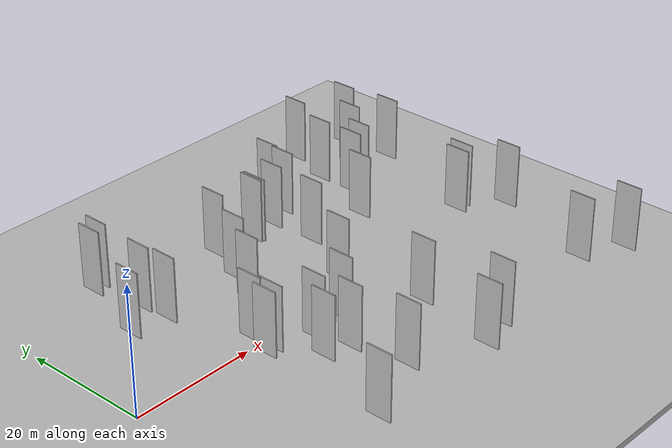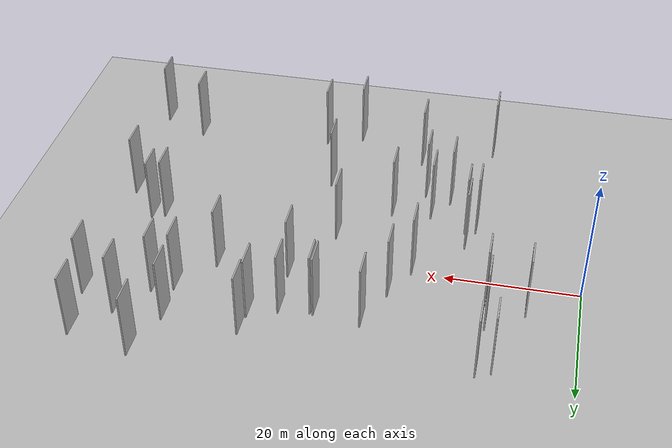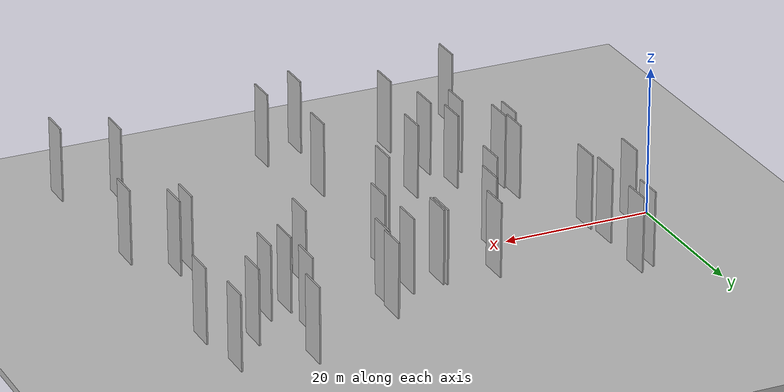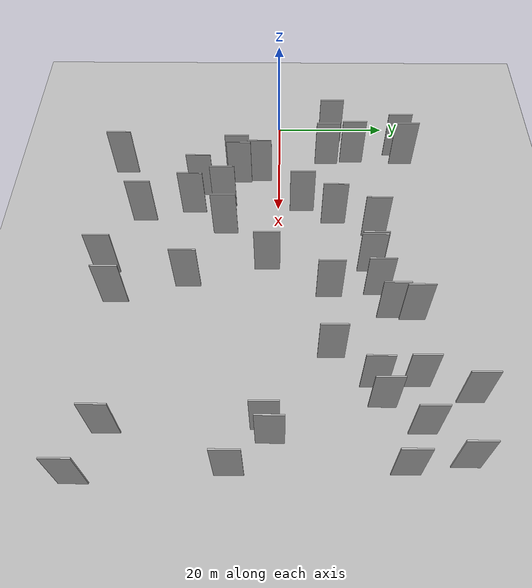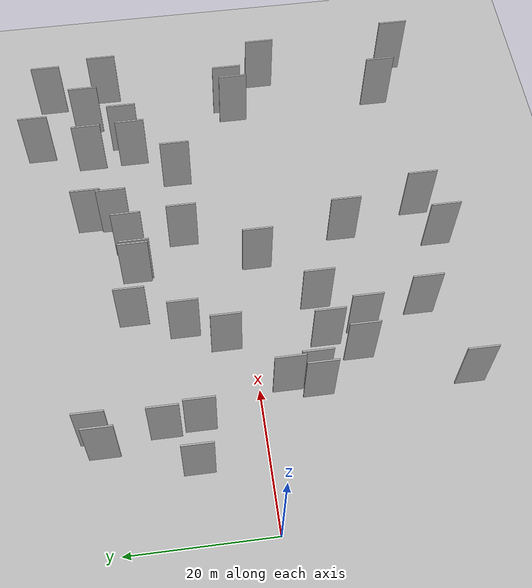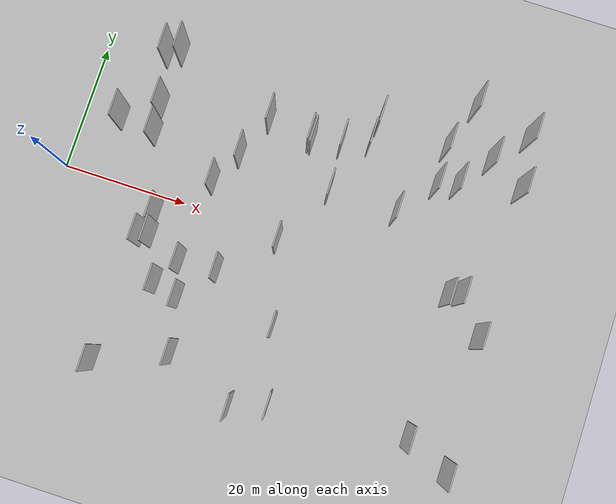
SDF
<?xml version="1.0" encoding="utf-8"?>

<sdf version="1.6">

   <world name="default">

      <gui fullscreen="0">

         <camera name="user_camera">

            <pose>-15 0 4.57585 0 0 0</pose>

            <view_controller>orbit</view_controller>

         </camera>

      </gui>

      <scene>

         <sky>

           <clouds>

             <speed>12</speed>

           </clouds>

         </sky>

         <ambient>0.4 0.4 0.4 1</ambient>

         <background>0.7 0.7 0.7 1</background>

         <shadows>1</shadows>

      </scene>

      <gravity>0 0 -9.8066</gravity>

      <magnetic_field>6e-06 2.3e-05 -4.2e-05</magnetic_field>

      <physics default="0" name="default_physics" type="ode">

         <ode>

            <solver>

               <type>quick</type>

               <iters>10</iters>

               <sor>1.0</sor>

               <use_dynamic_moi_rescaling>0</use_dynamic_moi_rescaling>

            </solver>

            <constraints>

               <cfm>0</cfm>

               <erp>0.2</erp>

               <contact_max_correcting_vel>100</contact_max_correcting_vel>

               <contact_surface_layer>0.001</contact_surface_layer>

            </constraints>

         </ode>

         <max_step_size>0.004</max_step_size>

         <real_time_factor>1</real_time_factor>

         <real_time_update_rate>250</real_time_update_rate>

      </physics>

      <light name="sun" type="directional">

         <cast_shadows>1</cast_shadows>

         <pose>0 0 10 0 0 0</pose>

         <diffuse>0.8 0.8 0.8 1</diffuse>

         <specular>0.2 0.2 0.2 1</specular>

         <attenuation>

            <range>1000</range>

            <constant>0.9</constant>

            <linear>0.01</linear>

            <quadratic>0.001</quadratic>

         </attenuation>

         <direction>-0.5 0.1 -0.9</direction>

      </light>

      <include>

         <name>ground_plane_1</name>

         <uri>model://HANNAS_ground_plane</uri>

         <pose>0 0 0  0 0 0</pose>

      </include>

      <include>

         <name>ground_plane_2</name>

         <uri>model://HANNAS_ground_plane</uri>

         <pose>100 0 0  0 0 0</pose>

      </include>

      <model name="HANNAS_wall_1">

         <static>1</static>

         <pose frame="">24.2432 3.9375 5.0 0.000000 0.000000 1.570796</pose>

         <link name="link">

            <pose frame="">0 0 5.00 0 0 0</pose>

            <collision name="collision">

               <geometry>

                  <box>

                     <size>4.00 0.2 10.00</size>

                  </box>

               </geometry>

               <max_contacts>10</max_contacts>

               <surface>

                  <contact>

                     <ode/>

                  </contact>

                  <bounce/>

                  <friction>

                     <torsional>

                        <ode/>

                     </torsional>

                     <ode/>

                  </friction>

               </surface>

            </collision>

            <visual name="visual">

               <cast_shadows>0</cast_shadows>

               <geometry>

                  <box>

                     <size>4.00 0.2 10.00</size>

                  </box>

               </geometry>

               <material>

                  <script>

                     <uri>model://HANNAS_wall/materials/scripts</uri>

                     <uri>model://HANNAS_wall/materials/textures</uri>

                     <name>vrc/HANNAS_wall</name>

                  </script>

               </material>

            </visual>

            <self_collide>0</self_collide>

            <enable_wind>0</enable_wind>

            <kinematic>0</kinematic>

         </link>

      </model>

      <model name="HANNAS_wall_2">

         <static>1</static>

         <pose frame="">23.2926 -9.1409 5.0 0.000000 0.000000 1.570796</pose>

         <link name="link">

            <pose frame="">0 0 5.00 0 0 0</pose>

            <collision name="collision">

               <geometry>

                  <box>

                     <size>4.00 0.2 10.00</size>

                  </box>

               </geometry>

               <max_contacts>10</max_contacts>

               <surface>

                  <contact>

                     <ode/>

                  </contact>

                  <bounce/>

                  <friction>

                     <torsional>

                        <ode/>

                     </torsional>

                     <ode/>

                  </friction>

               </surface>

            </collision>

            <visual name="visual">

               <cast_shadows>0</cast_shadows>

               <geometry>

                  <box>

                     <size>4.00 0.2 10.00</size>

                  </box>

               </geometry>

               <material>

                  <script>

                     <uri>model://HANNAS_wall/materials/scripts</uri>

                     <uri>model://HANNAS_wall/materials/textures</uri>

                     <name>vrc/HANNAS_wall</name>

                  </script>

               </material>

            </visual>

            <self_collide>0</self_collide>

            <enable_wind>0</enable_wind>

            <kinematic>0</kinematic>

         </link>

      </model>

      <model name="HANNAS_wall_3">

         <static>1</static>

         <pose frame="">45.2457 20.4414 5.0 0.000000 0.000000 1.570796</pose>

         <link name="link">

            <pose frame="">0 0 5.00 0 0 0</pose>

            <collision name="collision">

               <geometry>

                  <box>

                     <size>4.00 0.2 10.00</size>

                  </box>

               </geometry>

               <max_contacts>10</max_contacts>

               <surface>

                  <contact>

                     <ode/>

                  </contact>

                  <bounce/>

                  <friction>

                     <torsional>

                        <ode/>

                     </torsional>

                     <ode/>

                  </friction>

               </surface>

            </collision>

            <visual name="visual">

               <cast_shadows>0</cast_shadows>

               <geometry>

                  <box>

                     <size>4.00 0.2 10.00</size>

                  </box>

               </geometry>

               <material>

                  <script>

                     <uri>model://HANNAS_wall/materials/scripts</uri>

                     <uri>model://HANNAS_wall/materials/textures</uri>

                     <name>vrc/HANNAS_wall</name>

                  </script>

               </material>

            </visual>

            <self_collide>0</self_collide>

            <enable_wind>0</enable_wind>

            <kinematic>0</kinematic>

         </link>

      </model>

      <model name="HANNAS_wall_4">

         <static>1</static>

         <pose frame="">17.8846 -6.6903 5.0 0.000000 0.000000 1.570796</pose>

         <link name="link">

            <pose frame="">0 0 5.00 0 0 0</pose>

            <collision name="collision">

               <geometry>

                  <box>

                     <size>4.00 0.2 10.00</size>

                  </box>

               </geometry>

               <max_contacts>10</max_contacts>

               <surface>

                  <contact>

                     <ode/>

                  </contact>

                  <bounce/>

                  <friction>

                     <torsional>

                        <ode/>

                     </torsional>

                     <ode/>

                  </friction>

               </surface>

            </collision>

            <visual name="visual">

               <cast_shadows>0</cast_shadows>

               <geometry>

                  <box>

                     <size>4.00 0.2 10.00</size>

                  </box>

               </geometry>

               <material>

                  <script>

                     <uri>model://HANNAS_wall/materials/scripts</uri>

                     <uri>model://HANNAS_wall/materials/textures</uri>

                     <name>vrc/HANNAS_wall</name>

                  </script>

               </material>

            </visual>

            <self_collide>0</self_collide>

            <enable_wind>0</enable_wind>

            <kinematic>0</kinematic>

         </link>

      </model>

      <model name="HANNAS_wall_5">

         <static>1</static>

         <pose frame="">17.4919 -3.2314 5.0 0.000000 0.000000 1.570796</pose>

         <link name="link">

            <pose frame="">0 0 5.00 0 0 0</pose>

            <collision name="collision">

               <geometry>

                  <box>

                     <size>4.00 0.2 10.00</size>

                  </box>

               </geometry>

               <max_contacts>10</max_contacts>

               <surface>

                  <contact>

                     <ode/>

                  </contact>

                  <bounce/>

                  <friction>

                     <torsional>

                        <ode/>

                     </torsional>

                     <ode/>

                  </friction>

               </surface>

            </collision>

            <visual name="visual">

               <cast_shadows>0</cast_shadows>

               <geometry>

                  <box>

                     <size>4.00 0.2 10.00</size>

                  </box>

               </geometry>

               <material>

                  <script>

                     <uri>model://HANNAS_wall/materials/scripts</uri>

                     <uri>model://HANNAS_wall/materials/textures</uri>

                     <name>vrc/HANNAS_wall</name>

                  </script>

               </material>

            </visual>

            <self_collide>0</self_collide>

            <enable_wind>0</enable_wind>

            <kinematic>0</kinematic>

         </link>

      </model>

      <model name="HANNAS_wall_6">

         <static>1</static>

         <pose frame="">36.1043 14.7646 5.0 0.000000 0.000000 1.570796</pose>

         <link name="link">

            <pose frame="">0 0 5.00 0 0 0</pose>

            <collision name="collision">

               <geometry>

                  <box>

                     <size>4.00 0.2 10.00</size>

                  </box>

               </geometry>

               <max_contacts>10</max_contacts>

               <surface>

                  <contact>

                     <ode/>

                  </contact>

                  <bounce/>

                  <friction>

                     <torsional>

                        <ode/>

                     </torsional>

                     <ode/>

                  </friction>

               </surface>

            </collision>

            <visual name="visual">

               <cast_shadows>0</cast_shadows>

               <geometry>

                  <box>

                     <size>4.00 0.2 10.00</size>

                  </box>

               </geometry>

               <material>

                  <script>

                     <uri>model://HANNAS_wall/materials/scripts</uri>

                     <uri>model://HANNAS_wall/materials/textures</uri>

                     <name>vrc/HANNAS_wall</name>

                  </script>

               </material>

            </visual>

            <self_collide>0</self_collide>

            <enable_wind>0</enable_wind>

            <kinematic>0</kinematic>

         </link>

      </model>

      <model name="HANNAS_wall_7">

         <static>1</static>

         <pose frame="">13.2805 21.7446 5.0 0.000000 0.000000 1.570796</pose>

         <link name="link">

            <pose frame="">0 0 5.00 0 0 0</pose>

            <collision name="collision">

               <geometry>

                  <box>

                     <size>4.00 0.2 10.00</size>

                  </box>

               </geometry>

               <max_contacts>10</max_contacts>

               <surface>

                  <contact>

                     <ode/>

                  </contact>

                  <bounce/>

                  <friction>

                     <torsional>

                        <ode/>

                     </torsional>

                     <ode/>

                  </friction>

               </surface>

            </collision>

            <visual name="visual">

               <cast_shadows>0</cast_shadows>

               <geometry>

                  <box>

                     <size>4.00 0.2 10.00</size>

                  </box>

               </geometry>

               <material>

                  <script>

                     <uri>model://HANNAS_wall/materials/scripts</uri>

                     <uri>model://HANNAS_wall/materials/textures</uri>

                     <name>vrc/HANNAS_wall</name>

                  </script>

               </material>

            </visual>

            <self_collide>0</self_collide>

            <enable_wind>0</enable_wind>

            <kinematic>0</kinematic>

         </link>

      </model>

      <model name="HANNAS_wall_8">

         <static>1</static>

         <pose frame="">67.4534 25.0404 5.0 0.000000 0.000000 1.570796</pose>

         <link name="link">

            <pose frame="">0 0 5.00 0 0 0</pose>

            <collision name="collision">

               <geometry>

                  <box>

                     <size>4.00 0.2 10.00</size>

                  </box>

               </geometry>

               <max_contacts>10</max_contacts>

               <surface>

                  <contact>

                     <ode/>

                  </contact>

                  <bounce/>

                  <friction>

                     <torsional>

                        <ode/>

                     </torsional>

                     <ode/>

                  </friction>

               </surface>

            </collision>

            <visual name="visual">

               <cast_shadows>0</cast_shadows>

               <geometry>

                  <box>

                     <size>4.00 0.2 10.00</size>

                  </box>

               </geometry>

               <material>

                  <script>

                     <uri>model://HANNAS_wall/materials/scripts</uri>

                     <uri>model://HANNAS_wall/materials/textures</uri>

                     <name>vrc/HANNAS_wall</name>

                  </script>

               </material>

            </visual>

            <self_collide>0</self_collide>

            <enable_wind>0</enable_wind>

            <kinematic>0</kinematic>

         </link>

      </model>

      <model name="HANNAS_wall_9">

         <static>1</static>

         <pose frame="">29.4606 15.7195 5.0 0.000000 0.000000 1.570796</pose>

         <link name="link">

            <pose frame="">0 0 5.00 0 0 0</pose>

            <collision name="collision">

               <geometry>

                  <box>

                     <size>4.00 0.2 10.00</size>

                  </box>

               </geometry>

               <max_contacts>10</max_contacts>

               <surface>

                  <contact>

                     <ode/>

                  </contact>

                  <bounce/>

                  <friction>

                     <torsional>

                        <ode/>

                     </torsional>

                     <ode/>

                  </friction>

               </surface>

            </collision>

            <visual name="visual">

               <cast_shadows>0</cast_shadows>

               <geometry>

                  <box>

                     <size>4.00 0.2 10.00</size>

                  </box>

               </geometry>

               <material>

                  <script>

                     <uri>model://HANNAS_wall/materials/scripts</uri>

                     <uri>model://HANNAS_wall/materials/textures</uri>

                     <name>vrc/HANNAS_wall</name>

                  </script>

               </material>

            </visual>

            <self_collide>0</self_collide>

            <enable_wind>0</enable_wind>

            <kinematic>0</kinematic>

         </link>

      </model>

      <model name="HANNAS_wall_10">

         <static>1</static>

         <pose frame="">59.2026 14.6975 5.0 0.000000 0.000000 1.570796</pose>

         <link name="link">

            <pose frame="">0 0 5.00 0 0 0</pose>

            <collision name="collision">

               <geometry>

                  <box>

                     <size>4.00 0.2 10.00</size>

                  </box>

               </geometry>

               <max_contacts>10</max_contacts>

               <surface>

                  <contact>

                     <ode/>

                  </contact>

                  <bounce/>

                  <friction>

                     <torsional>

                        <ode/>

                     </torsional>

                     <ode/>

                  </friction>

               </surface>

            </collision>

            <visual name="visual">

               <cast_shadows>0</cast_shadows>

               <geometry>

                  <box>

                     <size>4.00 0.2 10.00</size>

                  </box>

               </geometry>

               <material>

                  <script>

                     <uri>model://HANNAS_wall/materials/scripts</uri>

                     <uri>model://HANNAS_wall/materials/textures</uri>

                     <name>vrc/HANNAS_wall</name>

                  </script>

               </material>

            </visual>

            <self_collide>0</self_collide>

            <enable_wind>0</enable_wind>

            <kinematic>0</kinematic>

         </link>

      </model>

      <model name="HANNAS_wall_11">

         <static>1</static>

         <pose frame="">29.0772 -8.6828 5.0 0.000000 0.000000 1.570796</pose>

         <link name="link">

            <pose frame="">0 0 5.00 0 0 0</pose>

            <collision name="collision">

               <geometry>

                  <box>

                     <size>4.00 0.2 10.00</size>

                  </box>

               </geometry>

               <max_contacts>10</max_contacts>

               <surface>

                  <contact>

                     <ode/>

                  </contact>

                  <bounce/>

                  <friction>

                     <torsional>

                        <ode/>

                     </torsional>

                     <ode/>

                  </friction>

               </surface>

            </collision>

            <visual name="visual">

               <cast_shadows>0</cast_shadows>

               <geometry>

                  <box>

                     <size>4.00 0.2 10.00</size>

                  </box>

               </geometry>

               <material>

                  <script>

                     <uri>model://HANNAS_wall/materials/scripts</uri>

                     <uri>model://HANNAS_wall/materials/textures</uri>

                     <name>vrc/HANNAS_wall</name>

                  </script>

               </material>

            </visual>

            <self_collide>0</self_collide>

            <enable_wind>0</enable_wind>

            <kinematic>0</kinematic>

         </link>

      </model>

      <model name="HANNAS_wall_12">

         <static>1</static>

         <pose frame="">68.4781 17.0027 5.0 0.000000 0.000000 1.570796</pose>

         <link name="link">

            <pose frame="">0 0 5.00 0 0 0</pose>

            <collision name="collision">

               <geometry>

                  <box>

                     <size>4.00 0.2 10.00</size>

                  </box>

               </geometry>

               <max_contacts>10</max_contacts>

               <surface>

                  <contact>

                     <ode/>

                  </contact>

                  <bounce/>

                  <friction>

                     <torsional>

                        <ode/>

                     </torsional>

                     <ode/>

                  </friction>

               </surface>

            </collision>

            <visual name="visual">

               <cast_shadows>0</cast_shadows>

               <geometry>

                  <box>

                     <size>4.00 0.2 10.00</size>

                  </box>

               </geometry>

               <material>

                  <script>

                     <uri>model://HANNAS_wall/materials/scripts</uri>

                     <uri>model://HANNAS_wall/materials/textures</uri>

                     <name>vrc/HANNAS_wall</name>

                  </script>

               </material>

            </visual>

            <self_collide>0</self_collide>

            <enable_wind>0</enable_wind>

            <kinematic>0</kinematic>

         </link>

      </model>

      <model name="HANNAS_wall_13">

         <static>1</static>

         <pose frame="">7.7186 9.2386 5.0 0.000000 0.000000 1.570796</pose>

         <link name="link">

            <pose frame="">0 0 5.00 0 0 0</pose>

            <collision name="collision">

               <geometry>

                  <box>

                     <size>4.00 0.2 10.00</size>

                  </box>

               </geometry>

               <max_contacts>10</max_contacts>

               <surface>

                  <contact>

                     <ode/>

                  </contact>

                  <bounce/>

                  <friction>

                     <torsional>

                        <ode/>

                     </torsional>

                     <ode/>

                  </friction>

               </surface>

            </collision>

            <visual name="visual">

               <cast_shadows>0</cast_shadows>

               <geometry>

                  <box>

                     <size>4.00 0.2 10.00</size>

                  </box>

               </geometry>

               <material>

                  <script>

                     <uri>model://HANNAS_wall/materials/scripts</uri>

                     <uri>model://HANNAS_wall/materials/textures</uri>

                     <name>vrc/HANNAS_wall</name>

                  </script>

               </material>

            </visual>

            <self_collide>0</self_collide>

            <enable_wind>0</enable_wind>

            <kinematic>0</kinematic>

         </link>

      </model>

      <model name="HANNAS_wall_14">

         <static>1</static>

         <pose frame="">56.2349 13.7219 5.0 0.000000 0.000000 1.570796</pose>

         <link name="link">

            <pose frame="">0 0 5.00 0 0 0</pose>

            <collision name="collision">

               <geometry>

                  <box>

                     <size>4.00 0.2 10.00</size>

                  </box>

               </geometry>

               <max_contacts>10</max_contacts>

               <surface>

                  <contact>

                     <ode/>

                  </contact>

                  <bounce/>

                  <friction>

                     <torsional>

                        <ode/>

                     </torsional>

                     <ode/>

                  </friction>

               </surface>

            </collision>

            <visual name="visual">

               <cast_shadows>0</cast_shadows>

               <geometry>

                  <box>

                     <size>4.00 0.2 10.00</size>

                  </box>

               </geometry>

               <material>

                  <script>

                     <uri>model://HANNAS_wall/materials/scripts</uri>

                     <uri>model://HANNAS_wall/materials/textures</uri>

                     <name>vrc/HANNAS_wall</name>

                  </script>

               </material>

            </visual>

            <self_collide>0</self_collide>

            <enable_wind>0</enable_wind>

            <kinematic>0</kinematic>

         </link>

      </model>

      <model name="HANNAS_wall_15">

         <static>1</static>

         <pose frame="">36.5384 14.5625 5.0 0.000000 0.000000 1.570796</pose>

         <link name="link">

            <pose frame="">0 0 5.00 0 0 0</pose>

            <collision name="collision">

               <geometry>

                  <box>

                     <size>4.00 0.2 10.00</size>

                  </box>

               </geometry>

               <max_contacts>10</max_contacts>

               <surface>

                  <contact>

                     <ode/>

                  </contact>

                  <bounce/>

                  <friction>

                     <torsional>

                        <ode/>

                     </torsional>

                     <ode/>

                  </friction>

               </surface>

            </collision>

            <visual name="visual">

               <cast_shadows>0</cast_shadows>

               <geometry>

                  <box>

                     <size>4.00 0.2 10.00</size>

                  </box>

               </geometry>

               <material>

                  <script>

                     <uri>model://HANNAS_wall/materials/scripts</uri>

                     <uri>model://HANNAS_wall/materials/textures</uri>

                     <name>vrc/HANNAS_wall</name>

                  </script>

               </material>

            </visual>

            <self_collide>0</self_collide>

            <enable_wind>0</enable_wind>

            <kinematic>0</kinematic>

         </link>

      </model>

      <model name="HANNAS_wall_16">

         <static>1</static>

         <pose frame="">40.8732 15.3403 5.0 0.000000 0.000000 1.570796</pose>

         <link name="link">

            <pose frame="">0 0 5.00 0 0 0</pose>

            <collision name="collision">

               <geometry>

                  <box>

                     <size>4.00 0.2 10.00</size>

                  </box>

               </geometry>

               <max_contacts>10</max_contacts>

               <surface>

                  <contact>

                     <ode/>

                  </contact>

                  <bounce/>

                  <friction>

                     <torsional>

                        <ode/>

                     </torsional>

                     <ode/>

                  </friction>

               </surface>

            </collision>

            <visual name="visual">

               <cast_shadows>0</cast_shadows>

               <geometry>

                  <box>

                     <size>4.00 0.2 10.00</size>

                  </box>

               </geometry>

               <material>

                  <script>

                     <uri>model://HANNAS_wall/materials/scripts</uri>

                     <uri>model://HANNAS_wall/materials/textures</uri>

                     <name>vrc/HANNAS_wall</name>

                  </script>

               </material>

            </visual>

            <self_collide>0</self_collide>

            <enable_wind>0</enable_wind>

            <kinematic>0</kinematic>

         </link>

      </model>

      <model name="HANNAS_wall_17">

         <static>1</static>

         <pose frame="">44.9119 17.0406 5.0 0.000000 0.000000 1.570796</pose>

         <link name="link">

            <pose frame="">0 0 5.00 0 0 0</pose>

            <collision name="collision">

               <geometry>

                  <box>

                     <size>4.00 0.2 10.00</size>

                  </box>

               </geometry>

               <max_contacts>10</max_contacts>

               <surface>

                  <contact>

                     <ode/>

                  </contact>

                  <bounce/>

                  <friction>

                     <torsional>

                        <ode/>

                     </torsional>

                     <ode/>

                  </friction>

               </surface>

            </collision>

            <visual name="visual">

               <cast_shadows>0</cast_shadows>

               <geometry>

                  <box>

                     <size>4.00 0.2 10.00</size>

                  </box>

               </geometry>

               <material>

                  <script>

                     <uri>model://HANNAS_wall/materials/scripts</uri>

                     <uri>model://HANNAS_wall/materials/textures</uri>

                     <name>vrc/HANNAS_wall</name>

                  </script>

               </material>

            </visual>

            <self_collide>0</self_collide>

            <enable_wind>0</enable_wind>

            <kinematic>0</kinematic>

         </link>

      </model>

      <model name="HANNAS_wall_18">

         <static>1</static>

         <pose frame="">39.5506 -14.0446 5.0 0.000000 0.000000 1.570796</pose>

         <link name="link">

            <pose frame="">0 0 5.00 0 0 0</pose>

            <collision name="collision">

               <geometry>

                  <box>

                     <size>4.00 0.2 10.00</size>

                  </box>

               </geometry>

               <max_contacts>10</max_contacts>

               <surface>

                  <contact>

                     <ode/>

                  </contact>

                  <bounce/>

                  <friction>

                     <torsional>

                        <ode/>

                     </torsional>

                     <ode/>

                  </friction>

               </surface>

            </collision>

            <visual name="visual">

               <cast_shadows>0</cast_shadows>

               <geometry>

                  <box>

                     <size>4.00 0.2 10.00</size>

                  </box>

               </geometry>

               <material>

                  <script>

                     <uri>model://HANNAS_wall/materials/scripts</uri>

                     <uri>model://HANNAS_wall/materials/textures</uri>

                     <name>vrc/HANNAS_wall</name>

                  </script>

               </material>

            </visual>

            <self_collide>0</self_collide>

            <enable_wind>0</enable_wind>

            <kinematic>0</kinematic>

         </link>

      </model>

      <model name="HANNAS_wall_19">

         <static>1</static>

         <pose frame="">62.9743 19.8848 5.0 0.000000 0.000000 1.570796</pose>

         <link name="link">

            <pose frame="">0 0 5.00 0 0 0</pose>

            <collision name="collision">

               <geometry>

                  <box>

                     <size>4.00 0.2 10.00</size>

                  </box>

               </geometry>

               <max_contacts>10</max_contacts>

               <surface>

                  <contact>

                     <ode/>

                  </contact>

                  <bounce/>

                  <friction>

                     <torsional>

                        <ode/>

                     </torsional>

                     <ode/>

                  </friction>

               </surface>

            </collision>

            <visual name="visual">

               <cast_shadows>0</cast_shadows>

               <geometry>

                  <box>

                     <size>4.00 0.2 10.00</size>

                  </box>

               </geometry>

               <material>

                  <script>

                     <uri>model://HANNAS_wall/materials/scripts</uri>

                     <uri>model://HANNAS_wall/materials/textures</uri>

                     <name>vrc/HANNAS_wall</name>

                  </script>

               </material>

            </visual>

            <self_collide>0</self_collide>

            <enable_wind>0</enable_wind>

            <kinematic>0</kinematic>

         </link>

      </model>

      <model name="HANNAS_wall_20">

         <static>1</static>

         <pose frame="">42.4502 -25.0538 5.0 0.000000 0.000000 1.570796</pose>

         <link name="link">

            <pose frame="">0 0 5.00 0 0 0</pose>

            <collision name="collision">

               <geometry>

                  <box>

                     <size>4.00 0.2 10.00</size>

                  </box>

               </geometry>

               <max_contacts>10</max_contacts>

               <surface>

                  <contact>

                     <ode/>

                  </contact>

                  <bounce/>

                  <friction>

                     <torsional>

                        <ode/>

                     </torsional>

                     <ode/>

                  </friction>

               </surface>

            </collision>

            <visual name="visual">

               <cast_shadows>0</cast_shadows>

               <geometry>

                  <box>

                     <size>4.00 0.2 10.00</size>

                  </box>

               </geometry>

               <material>

                  <script>

                     <uri>model://HANNAS_wall/materials/scripts</uri>

                     <uri>model://HANNAS_wall/materials/textures</uri>

                     <name>vrc/HANNAS_wall</name>

                  </script>

               </material>

            </visual>

            <self_collide>0</self_collide>

            <enable_wind>0</enable_wind>

            <kinematic>0</kinematic>

         </link>

      </model>

      <model name="HANNAS_wall_21">

         <static>1</static>

         <pose frame="">63.1284 -23.2529 5.0 0.000000 0.000000 1.570796</pose>

         <link name="link">

            <pose frame="">0 0 5.00 0 0 0</pose>

            <collision name="collision">

               <geometry>

                  <box>

                     <size>4.00 0.2 10.00</size>

                  </box>

               </geometry>

               <max_contacts>10</max_contacts>

               <surface>

                  <contact>

                     <ode/>

                  </contact>

                  <bounce/>

                  <friction>

                     <torsional>

                        <ode/>

                     </torsional>

                     <ode/>

                  </friction>

               </surface>

            </collision>

            <visual name="visual">

               <cast_shadows>0</cast_shadows>

               <geometry>

                  <box>

                     <size>4.00 0.2 10.00</size>

                  </box>

               </geometry>

               <material>

                  <script>

                     <uri>model://HANNAS_wall/materials/scripts</uri>

                     <uri>model://HANNAS_wall/materials/textures</uri>

                     <name>vrc/HANNAS_wall</name>

                  </script>

               </material>

            </visual>

            <self_collide>0</self_collide>

            <enable_wind>0</enable_wind>

            <kinematic>0</kinematic>

         </link>

      </model>

      <model name="HANNAS_wall_22">

         <static>1</static>

         <pose frame="">37.0051 -27.0518 5.0 0.000000 0.000000 1.570796</pose>

         <link name="link">

            <pose frame="">0 0 5.00 0 0 0</pose>

            <collision name="collision">

               <geometry>

                  <box>

                     <size>4.00 0.2 10.00</size>

                  </box>

               </geometry>

               <max_contacts>10</max_contacts>

               <surface>

                  <contact>

                     <ode/>

                  </contact>

                  <bounce/>

                  <friction>

                     <torsional>

                        <ode/>

                     </torsional>

                     <ode/>

                  </friction>

               </surface>

            </collision>

            <visual name="visual">

               <cast_shadows>0</cast_shadows>

               <geometry>

                  <box>

                     <size>4.00 0.2 10.00</size>

                  </box>

               </geometry>

               <material>

                  <script>

                     <uri>model://HANNAS_wall/materials/scripts</uri>

                     <uri>model://HANNAS_wall/materials/textures</uri>

                     <name>vrc/HANNAS_wall</name>

                  </script>

               </material>

            </visual>

            <self_collide>0</self_collide>

            <enable_wind>0</enable_wind>

            <kinematic>0</kinematic>

         </link>

      </model>

      <model name="HANNAS_wall_23">

         <static>1</static>

         <pose frame="">16.3018 -7.0420 5.0 0.000000 0.000000 1.570796</pose>

         <link name="link">

            <pose frame="">0 0 5.00 0 0 0</pose>

            <collision name="collision">

               <geometry>

                  <box>

                     <size>4.00 0.2 10.00</size>

                  </box>

               </geometry>

               <max_contacts>10</max_contacts>

               <surface>

                  <contact>

                     <ode/>

                  </contact>

                  <bounce/>

                  <friction>

                     <torsional>

                        <ode/>

                     </torsional>

                     <ode/>

                  </friction>

               </surface>

            </collision>

            <visual name="visual">

               <cast_shadows>0</cast_shadows>

               <geometry>

                  <box>

                     <size>4.00 0.2 10.00</size>

                  </box>

               </geometry>

               <material>

                  <script>

                     <uri>model://HANNAS_wall/materials/scripts</uri>

                     <uri>model://HANNAS_wall/materials/textures</uri>

                     <name>vrc/HANNAS_wall</name>

                  </script>

               </material>

            </visual>

            <self_collide>0</self_collide>

            <enable_wind>0</enable_wind>

            <kinematic>0</kinematic>

         </link>

      </model>

      <model name="HANNAS_wall_24">

         <static>1</static>

         <pose frame="">51.6771 7.8323 5.0 0.000000 0.000000 1.570796</pose>

         <link name="link">

            <pose frame="">0 0 5.00 0 0 0</pose>

            <collision name="collision">

               <geometry>

                  <box>

                     <size>4.00 0.2 10.00</size>

                  </box>

               </geometry>

               <max_contacts>10</max_contacts>

               <surface>

                  <contact>

                     <ode/>

                  </contact>

                  <bounce/>

                  <friction>

                     <torsional>

                        <ode/>

                     </torsional>

                     <ode/>

                  </friction>

               </surface>

            </collision>

            <visual name="visual">

               <cast_shadows>0</cast_shadows>

               <geometry>

                  <box>

                     <size>4.00 0.2 10.00</size>

                  </box>

               </geometry>

               <material>

                  <script>

                     <uri>model://HANNAS_wall/materials/scripts</uri>

                     <uri>model://HANNAS_wall/materials/textures</uri>

                     <name>vrc/HANNAS_wall</name>

                  </script>

               </material>

            </visual>

            <self_collide>0</self_collide>

            <enable_wind>0</enable_wind>

            <kinematic>0</kinematic>

         </link>

      </model>

      <model name="HANNAS_wall_25">

         <static>1</static>

         <pose frame="">68.7182 -6.2461 5.0 0.000000 0.000000 1.570796</pose>

         <link name="link">

            <pose frame="">0 0 5.00 0 0 0</pose>

            <collision name="collision">

               <geometry>

                  <box>

                     <size>4.00 0.2 10.00</size>

                  </box>

               </geometry>

               <max_contacts>10</max_contacts>

               <surface>

                  <contact>

                     <ode/>

                  </contact>

                  <bounce/>

                  <friction>

                     <torsional>

                        <ode/>

                     </torsional>

                     <ode/>

                  </friction>

               </surface>

            </collision>

            <visual name="visual">

               <cast_shadows>0</cast_shadows>

               <geometry>

                  <box>

                     <size>4.00 0.2 10.00</size>

                  </box>

               </geometry>

               <material>

                  <script>

                     <uri>model://HANNAS_wall/materials/scripts</uri>

                     <uri>model://HANNAS_wall/materials/textures</uri>

                     <name>vrc/HANNAS_wall</name>

                  </script>

               </material>

            </visual>

            <self_collide>0</self_collide>

            <enable_wind>0</enable_wind>

            <kinematic>0</kinematic>

         </link>

      </model>

      <model name="HANNAS_wall_26">

         <static>1</static>

         <pose frame="">11.2474 20.7764 5.0 0.000000 0.000000 1.570796</pose>

         <link name="link">

            <pose frame="">0 0 5.00 0 0 0</pose>

            <collision name="collision">

               <geometry>

                  <box>

                     <size>4.00 0.2 10.00</size>

                  </box>

               </geometry>

               <max_contacts>10</max_contacts>

               <surface>

                  <contact>

                     <ode/>

                  </contact>

                  <bounce/>

                  <friction>

                     <torsional>

                        <ode/>

                     </torsional>

                     <ode/>

                  </friction>

               </surface>

            </collision>

            <visual name="visual">

               <cast_shadows>0</cast_shadows>

               <geometry>

                  <box>

                     <size>4.00 0.2 10.00</size>

                  </box>

               </geometry>

               <material>

                  <script>

                     <uri>model://HANNAS_wall/materials/scripts</uri>

                     <uri>model://HANNAS_wall/materials/textures</uri>

                     <name>vrc/HANNAS_wall</name>

                  </script>

               </material>

            </visual>

            <self_collide>0</self_collide>

            <enable_wind>0</enable_wind>

            <kinematic>0</kinematic>

         </link>

      </model>

      <model name="HANNAS_wall_27">

         <static>1</static>

         <pose frame="">56.0778 19.7926 5.0 0.000000 0.000000 1.570796</pose>

         <link name="link">

            <pose frame="">0 0 5.00 0 0 0</pose>

            <collision name="collision">

               <geometry>

                  <box>

                     <size>4.00 0.2 10.00</size>

                  </box>

               </geometry>

               <max_contacts>10</max_contacts>

               <surface>

                  <contact>

                     <ode/>

                  </contact>

                  <bounce/>

                  <friction>

                     <torsional>

                        <ode/>

                     </torsional>

                     <ode/>

                  </friction>

               </surface>

            </collision>

            <visual name="visual">

               <cast_shadows>0</cast_shadows>

               <geometry>

                  <box>

                     <size>4.00 0.2 10.00</size>

                  </box>

               </geometry>

               <material>

                  <script>

                     <uri>model://HANNAS_wall/materials/scripts</uri>

                     <uri>model://HANNAS_wall/materials/textures</uri>

                     <name>vrc/HANNAS_wall</name>

                  </script>

               </material>

            </visual>

            <self_collide>0</self_collide>

            <enable_wind>0</enable_wind>

            <kinematic>0</kinematic>

         </link>

      </model>

      <model name="HANNAS_wall_28">

         <static>1</static>

         <pose frame="">58.4345 27.0939 5.0 0.000000 0.000000 1.570796</pose>

         <link name="link">

            <pose frame="">0 0 5.00 0 0 0</pose>

            <collision name="collision">

               <geometry>

                  <box>

                     <size>4.00 0.2 10.00</size>

                  </box>

               </geometry>

               <max_contacts>10</max_contacts>

               <surface>

                  <contact>

                     <ode/>

                  </contact>

                  <bounce/>

                  <friction>

                     <torsional>

                        <ode/>

                     </torsional>

                     <ode/>

                  </friction>

               </surface>

            </collision>

            <visual name="visual">

               <cast_shadows>0</cast_shadows>

               <geometry>

                  <box>

                     <size>4.00 0.2 10.00</size>

                  </box>

               </geometry>

               <material>

                  <script>

                     <uri>model://HANNAS_wall/materials/scripts</uri>

                     <uri>model://HANNAS_wall/materials/textures</uri>

                     <name>vrc/HANNAS_wall</name>

                  </script>

               </material>

            </visual>

            <self_collide>0</self_collide>

            <enable_wind>0</enable_wind>

            <kinematic>0</kinematic>

         </link>

      </model>

      <model name="HANNAS_wall_29">

         <static>1</static>

         <pose frame="">24.7310 -14.1967 5.0 0.000000 0.000000 1.570796</pose>

         <link name="link">

            <pose frame="">0 0 5.00 0 0 0</pose>

            <collision name="collision">

               <geometry>

                  <box>

                     <size>4.00 0.2 10.00</size>

                  </box>

               </geometry>

               <max_contacts>10</max_contacts>

               <surface>

                  <contact>

                     <ode/>

                  </contact>

                  <bounce/>

                  <friction>

                     <torsional>

                        <ode/>

                     </torsional>

                     <ode/>

                  </friction>

               </surface>

            </collision>

            <visual name="visual">

               <cast_shadows>0</cast_shadows>

               <geometry>

                  <box>

                     <size>4.00 0.2 10.00</size>

                  </box>

               </geometry>

               <material>

                  <script>

                     <uri>model://HANNAS_wall/materials/scripts</uri>

                     <uri>model://HANNAS_wall/materials/textures</uri>

                     <name>vrc/HANNAS_wall</name>

                  </script>

               </material>

            </visual>

            <self_collide>0</self_collide>

            <enable_wind>0</enable_wind>

            <kinematic>0</kinematic>

         </link>

      </model>

      <model name="HANNAS_wall_30">

         <static>1</static>

         <pose frame="">15.6871 -26.7998 5.0 0.000000 0.000000 1.570796</pose>

         <link name="link">

            <pose frame="">0 0 5.00 0 0 0</pose>

            <collision name="collision">

               <geometry>

                  <box>

                     <size>4.00 0.2 10.00</size>

                  </box>

               </geometry>

               <max_contacts>10</max_contacts>

               <surface>

                  <contact>

                     <ode/>

                  </contact>

                  <bounce/>

                  <friction>

                     <torsional>

                        <ode/>

                     </torsional>

                     <ode/>

                  </friction>

               </surface>

            </collision>

            <visual name="visual">

               <cast_shadows>0</cast_shadows>

               <geometry>

                  <box>

                     <size>4.00 0.2 10.00</size>

                  </box>

               </geometry>

               <material>

                  <script>

                     <uri>model://HANNAS_wall/materials/scripts</uri>

                     <uri>model://HANNAS_wall/materials/textures</uri>

                     <name>vrc/HANNAS_wall</name>

                  </script>

               </material>

            </visual>

            <self_collide>0</self_collide>

            <enable_wind>0</enable_wind>

            <kinematic>0</kinematic>

         </link>

      </model>

      <model name="HANNAS_wall_31">

         <static>1</static>

         <pose frame="">20.8302 -13.1059 5.0 0.000000 0.000000 1.570796</pose>

         <link name="link">

            <pose frame="">0 0 5.00 0 0 0</pose>

            <collision name="collision">

               <geometry>

                  <box>

                     <size>4.00 0.2 10.00</size>

                  </box>

               </geometry>

               <max_contacts>10</max_contacts>

               <surface>

                  <contact>

                     <ode/>

                  </contact>

                  <bounce/>

                  <friction>

                     <torsional>

                        <ode/>

                     </torsional>

                     <ode/>

                  </friction>

               </surface>

            </collision>

            <visual name="visual">

               <cast_shadows>0</cast_shadows>

               <geometry>

                  <box>

                     <size>4.00 0.2 10.00</size>

                  </box>

               </geometry>

               <material>

                  <script>

                     <uri>model://HANNAS_wall/materials/scripts</uri>

                     <uri>model://HANNAS_wall/materials/textures</uri>

                     <name>vrc/HANNAS_wall</name>

                  </script>

               </material>

            </visual>

            <self_collide>0</self_collide>

            <enable_wind>0</enable_wind>

            <kinematic>0</kinematic>

         </link>

      </model>

      <model name="HANNAS_wall_32">

         <static>1</static>

         <pose frame="">64.3896 -0.8930 5.0 0.000000 0.000000 1.570796</pose>

         <link name="link">

            <pose frame="">0 0 5.00 0 0 0</pose>

            <collision name="collision">

               <geometry>

                  <box>

                     <size>4.00 0.2 10.00</size>

                  </box>

               </geometry>

               <max_contacts>10</max_contacts>

               <surface>

                  <contact>

                     <ode/>

                  </contact>

                  <bounce/>

                  <friction>

                     <torsional>

                        <ode/>

                     </torsional>

                     <ode/>

                  </friction>

               </surface>

            </collision>

            <visual name="visual">

               <cast_shadows>0</cast_shadows>

               <geometry>

                  <box>

                     <size>4.00 0.2 10.00</size>

                  </box>

               </geometry>

               <material>

                  <script>

                     <uri>model://HANNAS_wall/materials/scripts</uri>

                     <uri>model://HANNAS_wall/materials/textures</uri>

                     <name>vrc/HANNAS_wall</name>

                  </script>

               </material>

            </visual>

            <self_collide>0</self_collide>

            <enable_wind>0</enable_wind>

            <kinematic>0</kinematic>

         </link>

      </model>

      <model name="HANNAS_wall_33">

         <static>1</static>

         <pose frame="">69.9042 -26.4510 5.0 0.000000 0.000000 1.570796</pose>

         <link name="link">

            <pose frame="">0 0 5.00 0 0 0</pose>

            <collision name="collision">

               <geometry>

                  <box>

                     <size>4.00 0.2 10.00</size>

                  </box>

               </geometry>

               <max_contacts>10</max_contacts>

               <surface>

                  <contact>

                     <ode/>

                  </contact>

                  <bounce/>

                  <friction>

                     <torsional>

                        <ode/>

                     </torsional>

                     <ode/>

                  </friction>

               </surface>

            </collision>

            <visual name="visual">

               <cast_shadows>0</cast_shadows>

               <geometry>

                  <box>

                     <size>4.00 0.2 10.00</size>

                  </box>

               </geometry>

               <material>

                  <script>

                     <uri>model://HANNAS_wall/materials/scripts</uri>

                     <uri>model://HANNAS_wall/materials/textures</uri>

                     <name>vrc/HANNAS_wall</name>

                  </script>

               </material>

            </visual>

            <self_collide>0</self_collide>

            <enable_wind>0</enable_wind>

            <kinematic>0</kinematic>

         </link>

      </model>

      <model name="HANNAS_wall_34">

         <static>1</static>

         <pose frame="">62.5424 -1.6298 5.0 0.000000 0.000000 1.570796</pose>

         <link name="link">

            <pose frame="">0 0 5.00 0 0 0</pose>

            <collision name="collision">

               <geometry>

                  <box>

                     <size>4.00 0.2 10.00</size>

                  </box>

               </geometry>

               <max_contacts>10</max_contacts>

               <surface>

                  <contact>

                     <ode/>

                  </contact>

                  <bounce/>

                  <friction>

                     <torsional>

                        <ode/>

                     </torsional>

                     <ode/>

                  </friction>

               </surface>

            </collision>

            <visual name="visual">

               <cast_shadows>0</cast_shadows>

               <geometry>

                  <box>

                     <size>4.00 0.2 10.00</size>

                  </box>

               </geometry>

               <material>

                  <script>

                     <uri>model://HANNAS_wall/materials/scripts</uri>

                     <uri>model://HANNAS_wall/materials/textures</uri>

                     <name>vrc/HANNAS_wall</name>

                  </script>

               </material>

            </visual>

            <self_collide>0</self_collide>

            <enable_wind>0</enable_wind>

            <kinematic>0</kinematic>

         </link>

      </model>

      <model name="HANNAS_wall_35">

         <static>1</static>

         <pose frame="">13.4069 8.4453 5.0 0.000000 0.000000 1.570796</pose>

         <link name="link">

            <pose frame="">0 0 5.00 0 0 0</pose>

            <collision name="collision">

               <geometry>

                  <box>

                     <size>4.00 0.2 10.00</size>

                  </box>

               </geometry>

               <max_contacts>10</max_contacts>

               <surface>

                  <contact>

                     <ode/>

                  </contact>

                  <bounce/>

                  <friction>

                     <torsional>

                        <ode/>

                     </torsional>

                     <ode/>

                  </friction>

               </surface>

            </collision>

            <visual name="visual">

               <cast_shadows>0</cast_shadows>

               <geometry>

                  <box>

                     <size>4.00 0.2 10.00</size>

                  </box>

               </geometry>

               <material>

                  <script>

                     <uri>model://HANNAS_wall/materials/scripts</uri>

                     <uri>model://HANNAS_wall/materials/textures</uri>

                     <name>vrc/HANNAS_wall</name>

                  </script>

               </material>

            </visual>

            <self_collide>0</self_collide>

            <enable_wind>0</enable_wind>

            <kinematic>0</kinematic>

         </link>

      </model>

      <model name="HANNAS_wall_36">

         <static>1</static>

         <pose frame="">26.5168 -22.3366 5.0 0.000000 0.000000 1.570796</pose>

         <link name="link">

            <pose frame="">0 0 5.00 0 0 0</pose>

            <collision name="collision">

               <geometry>

                  <box>

                     <size>4.00 0.2 10.00</size>

                  </box>

               </geometry>

               <max_contacts>10</max_contacts>

               <surface>

                  <contact>

                     <ode/>

                  </contact>

                  <bounce/>

                  <friction>

                     <torsional>

                        <ode/>

                     </torsional>

                     <ode/>

                  </friction>

               </surface>

            </collision>

            <visual name="visual">

               <cast_shadows>0</cast_shadows>

               <geometry>

                  <box>

                     <size>4.00 0.2 10.00</size>

                  </box>

               </geometry>

               <material>

                  <script>

                     <uri>model://HANNAS_wall/materials/scripts</uri>

                     <uri>model://HANNAS_wall/materials/textures</uri>

                     <name>vrc/HANNAS_wall</name>

                  </script>

               </material>

            </visual>

            <self_collide>0</self_collide>

            <enable_wind>0</enable_wind>

            <kinematic>0</kinematic>

         </link>

      </model>

      <model name="HANNAS_wall_37">

         <static>1</static>

         <pose frame="">26.8548 9.1257 5.0 0.000000 0.000000 1.570796</pose>

         <link name="link">

            <pose frame="">0 0 5.00 0 0 0</pose>

            <collision name="collision">

               <geometry>

                  <box>

                     <size>4.00 0.2 10.00</size>

                  </box>

               </geometry>

               <max_contacts>10</max_contacts>

               <surface>

                  <contact>

                     <ode/>

                  </contact>

                  <bounce/>

                  <friction>

                     <torsional>

                        <ode/>

                     </torsional>

                     <ode/>

                  </friction>

               </surface>

            </collision>

            <visual name="visual">

               <cast_shadows>0</cast_shadows>

               <geometry>

                  <box>

                     <size>4.00 0.2 10.00</size>

                  </box>

               </geometry>

               <material>

                  <script>

                     <uri>model://HANNAS_wall/materials/scripts</uri>

                     <uri>model://HANNAS_wall/materials/textures</uri>

                     <name>vrc/HANNAS_wall</name>

                  </script>

               </material>

            </visual>

            <self_collide>0</self_collide>

            <enable_wind>0</enable_wind>

            <kinematic>0</kinematic>

         </link>

      </model>

      <model name="HANNAS_wall_38">

         <static>1</static>

         <pose frame="">12.9671 12.8902 5.0 0.000000 0.000000 1.570796</pose>

         <link name="link">

            <pose frame="">0 0 5.00 0 0 0</pose>

            <collision name="collision">

               <geometry>

                  <box>

                     <size>4.00 0.2 10.00</size>

                  </box>

               </geometry>

               <max_contacts>10</max_contacts>

               <surface>

                  <contact>

                     <ode/>

                  </contact>

                  <bounce/>

                  <friction>

                     <torsional>

                        <ode/>

                     </torsional>

                     <ode/>

                  </friction>

               </surface>

            </collision>

            <visual name="visual">

               <cast_shadows>0</cast_shadows>

               <geometry>

                  <box>

                     <size>4.00 0.2 10.00</size>

                  </box>

               </geometry>

               <material>

                  <script>

                     <uri>model://HANNAS_wall/materials/scripts</uri>

                     <uri>model://HANNAS_wall/materials/textures</uri>

                     <name>vrc/HANNAS_wall</name>

                  </script>

               </material>

            </visual>

            <self_collide>0</self_collide>

            <enable_wind>0</enable_wind>

            <kinematic>0</kinematic>

         </link>

      </model>

      <model name="HANNAS_wall_39">

         <static>1</static>

         <pose frame="">36.2643 -1.6949 5.0 0.000000 0.000000 1.570796</pose>

         <link name="link">

            <pose frame="">0 0 5.00 0 0 0</pose>

            <collision name="collision">

               <geometry>

                  <box>

                     <size>4.00 0.2 10.00</size>

                  </box>

               </geometry>

               <max_contacts>10</max_contacts>

               <surface>

                  <contact>

                     <ode/>

                  </contact>

                  <bounce/>

                  <friction>

                     <torsional>

                        <ode/>

                     </torsional>

                     <ode/>

                  </friction>

               </surface>

            </collision>

            <visual name="visual">

               <cast_shadows>0</cast_shadows>

               <geometry>

                  <box>

                     <size>4.00 0.2 10.00</size>

                  </box>

               </geometry>

               <material>

                  <script>

                     <uri>model://HANNAS_wall/materials/scripts</uri>

                     <uri>model://HANNAS_wall/materials/textures</uri>

                     <name>vrc/HANNAS_wall</name>

                  </script>

               </material>

            </visual>

            <self_collide>0</self_collide>

            <enable_wind>0</enable_wind>

            <kinematic>0</kinematic>

         </link>

      </model>

      <model name="HANNAS_wall_40">

         <static>1</static>

         <pose frame="">41.2834 7.9140 5.0 0.000000 0.000000 1.570796</pose>

         <link name="link">

            <pose frame="">0 0 5.00 0 0 0</pose>

            <collision name="collision">

               <geometry>

                  <box>

                     <size>4.00 0.2 10.00</size>

                  </box>

               </geometry>

               <max_contacts>10</max_contacts>

               <surface>

                  <contact>

                     <ode/>

                  </contact>

                  <bounce/>

                  <friction>

                     <torsional>

                        <ode/>

                     </torsional>

                     <ode/>

                  </friction>

               </surface>

            </collision>

            <visual name="visual">

               <cast_shadows>0</cast_shadows>

               <geometry>

                  <box>

                     <size>4.00 0.2 10.00</size>

                  </box>

               </geometry>

               <material>

                  <script>

                     <uri>model://HANNAS_wall/materials/scripts</uri>

                     <uri>model://HANNAS_wall/materials/textures</uri>

                     <name>vrc/HANNAS_wall</name>

                  </script>

               </material>

            </visual>

            <self_collide>0</self_collide>

            <enable_wind>0</enable_wind>

            <kinematic>0</kinematic>

         </link>

      </model>

   </world>

</sdf>
